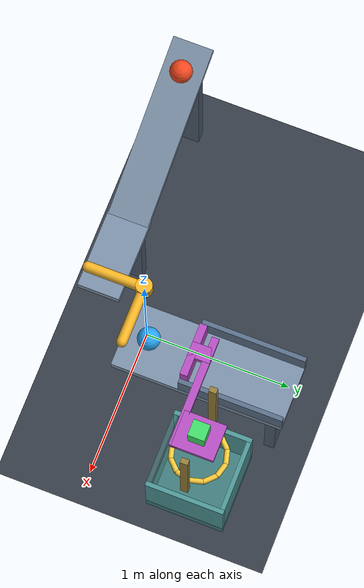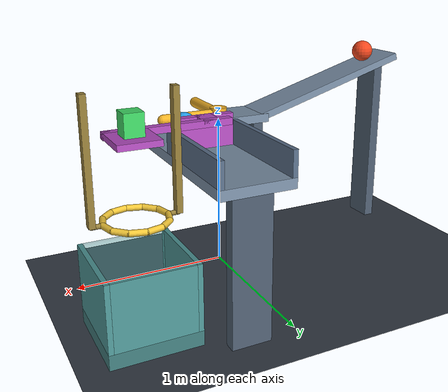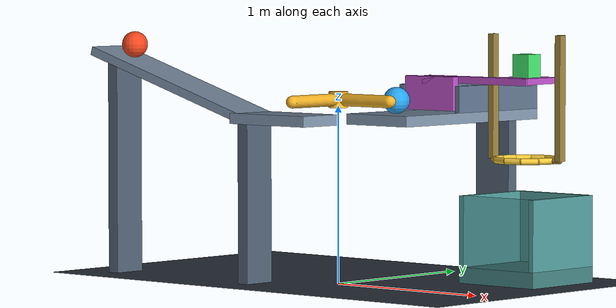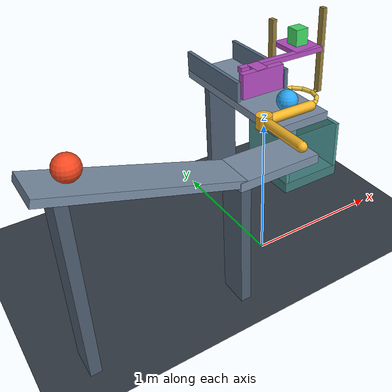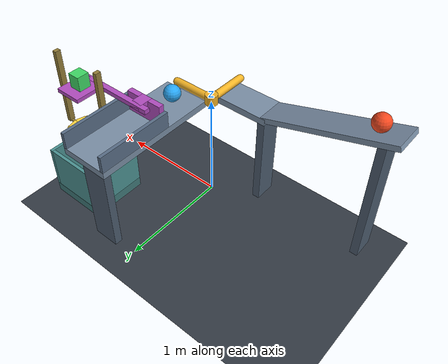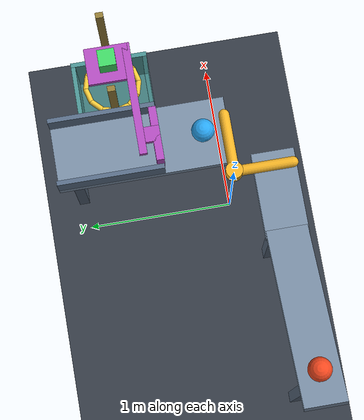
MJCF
<mujoco model="ramp_rotor_latch_drop">
  <compiler angle="degree" autolimits="true"/>
  <option timestep="0.002" gravity="0 0 -9.81" integrator="implicitfast" solver="Newton" iterations="80" cone="elliptic"/>
  <size njmax="1000" nconmax="200"/>
  <visual>
    <global azimuth="135" elevation="-24"/>
    <headlight ambient="0.35 0.35 0.35" diffuse="0.65 0.65 0.65" specular="0.2 0.2 0.2"/>
  </visual>

  <worldbody>
    <light name="overhead" pos="-0.5 -1.5 4" dir="0.2 0.3 -1" directional="true"/>
    <camera name="overview" pos="2.7 -3.8 2.7" xyaxes="0.82 0.57 0 -0.24 0.35 0.91"/>

    <geom name="floor" type="plane" pos="0 0 0" size="4 4 0.1" friction="0.8 0.03 0.01" condim="6" rgba="0.20 0.23 0.27 1"/>

    <!-- The ball starts one metre along the incline from its downhill end. -->
    <body name="ramp">
      <geom name="ramp_incline" type="box" pos="-0.981879 -0.27 1.108464" euler="0 16.699244 0" size="0.6 0.135 0.025" friction="0.45 0.008 0.002" condim="6" rgba="0.48 0.56 0.65 1"/>
      <geom name="ramp_ball1_runout" type="box" pos="-0.17 -0.27 0.93" size="0.28 0.14 0.03" friction="0.45 0.008 0.002" condim="6" rgba="0.48 0.56 0.65 1"/>
      <geom name="ramp_ball2_runway" type="box" pos="0.30 0.55 0.93" size="0.22 0.57 0.03" friction="0.45 0.008 0.002" condim="6" rgba="0.48 0.56 0.65 1"/>
      <geom name="ramp_ball2_left_guide" type="box" pos="0.095 0.775 1.035" size="0.015 0.345 0.075" friction="0.25 0.005 0.002" condim="6" rgba="0.35 0.43 0.53 1"/>
      <geom name="ramp_ball2_right_guide" type="box" pos="0.505 0.775 1.035" size="0.015 0.345 0.075" friction="0.25 0.005 0.002" condim="6" rgba="0.35 0.43 0.53 1"/>
      <geom name="ramp_upper_leg" type="box" pos="-1.42 -0.27 0.61" size="0.035 0.10 0.61" rgba="0.30 0.36 0.43 1"/>
      <geom name="ramp_lower_leg" type="box" pos="-0.39 -0.27 0.45" size="0.035 0.10 0.45" rgba="0.30 0.36 0.43 1"/>
      <geom name="ramp_runway_leg" type="box" pos="0.30 1.02 0.45" size="0.12 0.035 0.45" rgba="0.30 0.36 0.43 1"/>
    </body>

    <body name="ball1" pos="-1.336275 -0.27 1.319185">
      <freejoint name="ball1_free"/>
      <geom name="ball1_sphere" type="sphere" size="0.075" mass="0.18" friction="0.65 0.015 0.004" condim="6" solref="0.008 1" rgba="0.95 0.28 0.12 1"/>
    </body>

    <!-- The incoming ball drives the negative-y arm; the other arm sweeps into ball2. -->
    <body name="rotor" pos="0 0 1.035">
      <inertial pos="0 0 0" mass="0.075" diaginertia="0.0014 0.0014 0.0025"/>
      <joint name="rotor_hinge" type="hinge" axis="0 0 1" range="0 100" damping="0.006" frictionloss="0.001" armature="0.0005"/>
      <geom name="rotor_hub" type="cylinder" size="0.055 0.045" friction="0.3 0.005 0.001" rgba="0.95 0.70 0.15 1"/>
      <geom name="rotor_trigger_arm" type="capsule" fromto="0 -0.045 0 0 -0.38 0" size="0.035" friction="0.3 0.005 0.001" solref="0.008 1" rgba="0.95 0.70 0.15 1"/>
      <geom name="rotor_striker_arm" type="capsule" fromto="0.045 0 0 0.38 0 0" size="0.035" friction="0.3 0.005 0.001" solref="0.008 1" rgba="0.95 0.70 0.15 1"/>
    </body>

    <body name="ball2" pos="0.30 0.15 1.035">
      <freejoint name="ball2_free"/>
      <geom name="ball2_sphere" type="sphere" size="0.075" mass="0.14" friction="0.55 0.01 0.004" condim="6" solref="0.008 1" rgba="0.16 0.65 0.95 1"/>
    </body>

    <!-- A sideways extension places the payload beside, not above, the ball runway. -->
    <body name="latch" pos="0.30 0.45 1.065">
      <inertial pos="0.25 0.12 0.06" mass="0.07" diaginertia="0.0015 0.008 0.008"/>
      <joint name="latch_slide" type="slide" axis="0 1 0" range="0 0.43" damping="0.006" frictionloss="0.002" armature="0.001"/>
      <geom name="latch_striker_face" type="box" pos="0 0 0" size="0.175 0.025 0.095" friction="0.02 0.003 0.001" solref="0.008 1" rgba="0.70 0.30 0.75 1"/>
      <geom name="latch_longitudinal_link" type="box" pos="0 0.05 0.075" size="0.05 0.075 0.02" friction="0.015 0.003 0.001" rgba="0.70 0.30 0.75 1"/>
      <geom name="latch_cross_link" type="box" pos="0.25 0.10 0.075" size="0.37 0.025 0.02" friction="0.015 0.003 0.001" rgba="0.70 0.30 0.75 1"/>
      <geom name="latch_payload_shelf" type="box" pos="0.50 0.23 0.0775" size="0.12 0.14 0.0175" friction="0.015 0.003 0.001" solref="0.008 1" rgba="0.70 0.30 0.75 1"/>
    </body>

    <body name="block" pos="0.80 0.68 1.225">
      <freejoint name="block_free"/>
      <geom name="block_payload" type="box" size="0.055 0.055 0.065" mass="0.22" friction="0.02 0.003 0.001" condim="6" solref="0.008 1" rgba="0.25 0.85 0.40 1"/>
    </body>

    <!-- Twelve capsules form an unobstructed circular drop opening. -->
    <body name="ring" pos="0.80 0.68 0.70">
      <geom name="ring_segment_01" type="capsule" fromto="0.180000 0 0 0.155885 0.090000 0" size="0.018" friction="0.3 0.005 0.001" rgba="0.95 0.78 0.22 1"/>
      <geom name="ring_segment_02" type="capsule" fromto="0.155885 0.090000 0 0.090000 0.155885 0" size="0.018" friction="0.3 0.005 0.001" rgba="0.95 0.78 0.22 1"/>
      <geom name="ring_segment_03" type="capsule" fromto="0.090000 0.155885 0 0 0.180000 0" size="0.018" friction="0.3 0.005 0.001" rgba="0.95 0.78 0.22 1"/>
      <geom name="ring_segment_04" type="capsule" fromto="0 0.180000 0 -0.090000 0.155885 0" size="0.018" friction="0.3 0.005 0.001" rgba="0.95 0.78 0.22 1"/>
      <geom name="ring_segment_05" type="capsule" fromto="-0.090000 0.155885 0 -0.155885 0.090000 0" size="0.018" friction="0.3 0.005 0.001" rgba="0.95 0.78 0.22 1"/>
      <geom name="ring_segment_06" type="capsule" fromto="-0.155885 0.090000 0 -0.180000 0 0" size="0.018" friction="0.3 0.005 0.001" rgba="0.95 0.78 0.22 1"/>
      <geom name="ring_segment_07" type="capsule" fromto="-0.180000 0 0 -0.155885 -0.090000 0" size="0.018" friction="0.3 0.005 0.001" rgba="0.95 0.78 0.22 1"/>
      <geom name="ring_segment_08" type="capsule" fromto="-0.155885 -0.090000 0 -0.090000 -0.155885 0" size="0.018" friction="0.3 0.005 0.001" rgba="0.95 0.78 0.22 1"/>
      <geom name="ring_segment_09" type="capsule" fromto="-0.090000 -0.155885 0 0 -0.180000 0" size="0.018" friction="0.3 0.005 0.001" rgba="0.95 0.78 0.22 1"/>
      <geom name="ring_segment_10" type="capsule" fromto="0 -0.180000 0 0.090000 -0.155885 0" size="0.018" friction="0.3 0.005 0.001" rgba="0.95 0.78 0.22 1"/>
      <geom name="ring_segment_11" type="capsule" fromto="0.090000 -0.155885 0 0.155885 -0.090000 0" size="0.018" friction="0.3 0.005 0.001" rgba="0.95 0.78 0.22 1"/>
      <geom name="ring_segment_12" type="capsule" fromto="0.155885 -0.090000 0 0.180000 0 0" size="0.018" friction="0.3 0.005 0.001" rgba="0.95 0.78 0.22 1"/>
      <geom name="ring_left_post" type="box" pos="-0.24 0 0.35" size="0.018 0.025 0.35" rgba="0.58 0.49 0.22 1"/>
      <geom name="ring_right_post" type="box" pos="0.24 0 0.35" size="0.018 0.025 0.35" rgba="0.58 0.49 0.22 1"/>
      <geom name="ring_left_connector" type="capsule" fromto="-0.24 0 0 -0.18 0 0" size="0.014" rgba="0.58 0.49 0.22 1"/>
      <geom name="ring_right_connector" type="capsule" fromto="0.18 0 0 0.24 0 0" size="0.014" rgba="0.58 0.49 0.22 1"/>
    </body>

    <body name="box" pos="0.80 0.68 0">
      <geom name="box_bottom" type="box" pos="0 0 0.055" size="0.265 0.265 0.045" friction="0.85 0.025 0.008" condim="6" solref="0.008 1" rgba="0.25 0.48 0.48 1"/>
      <geom name="box_left_wall" type="box" pos="-0.25 0 0.30" size="0.015 0.265 0.20" friction="0.7 0.02 0.006" condim="6" rgba="0.30 0.58 0.58 1"/>
      <geom name="box_right_wall" type="box" pos="0.25 0 0.30" size="0.015 0.265 0.20" friction="0.7 0.02 0.006" condim="6" rgba="0.30 0.58 0.58 1"/>
      <geom name="box_front_wall" type="box" pos="0 -0.25 0.30" size="0.235 0.015 0.20" friction="0.7 0.02 0.006" condim="6" rgba="0.30 0.58 0.58 0.45"/>
      <geom name="box_back_wall" type="box" pos="0 0.25 0.30" size="0.235 0.015 0.20" friction="0.7 0.02 0.006" condim="6" rgba="0.30 0.58 0.58 1"/>
    </body>
  </worldbody>

  <keyframe>
    <key name="start" qpos="-1.336275 -0.27 1.319185 1 0 0 0 0 0.30 0.15 1.035 1 0 0 0 0 0.80 0.68 1.225 1 0 0 0"/>
  </keyframe>
</mujoco>
